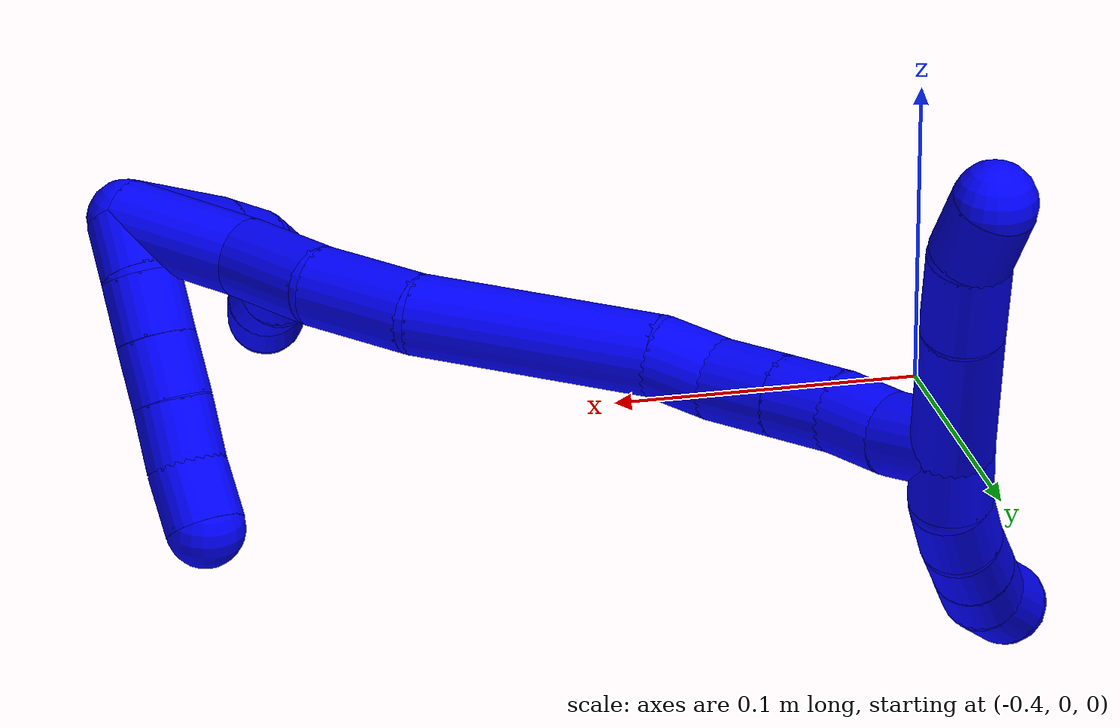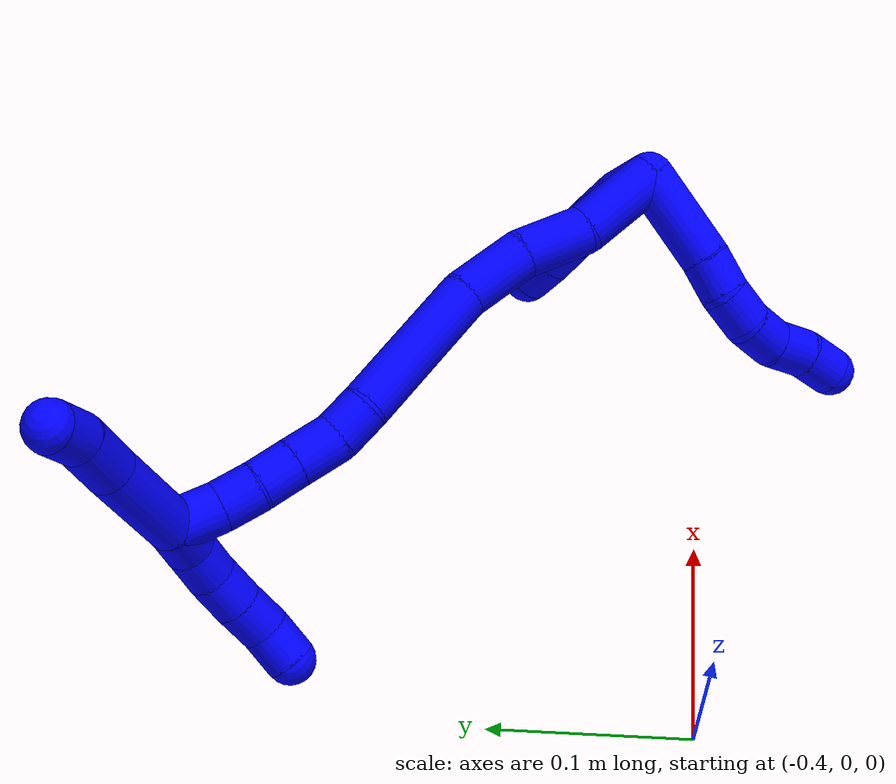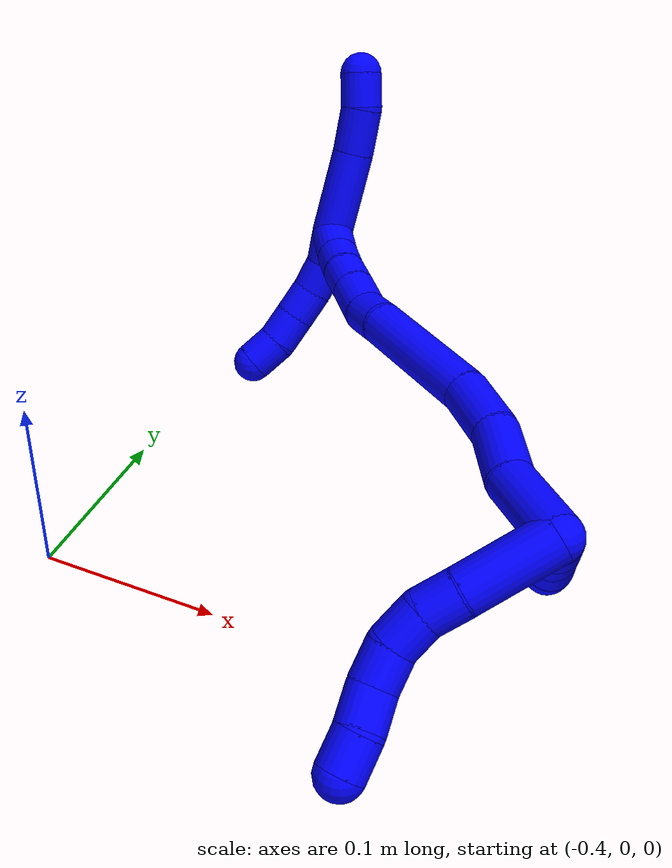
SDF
<sdf version="1.7">
 <world name="default">
  <model name="1">
   <static>0</static>
   <link name="1">
    <collision name="collision-cylinder-e_1_2_8">
     <pose>-0.017729 -0.012475 -0.011765 2.32689 -0.802058 -1.55331</pose>
     <geometry><cylinder><radius>0.0125</radius><length>0.04933</length></cylinder></geometry>
     <surface>
      <friction><ode><mu>1.16</mu><mu2>1.16</mu2><slip1>0</slip1><slip2>0</slip2></ode></friction>
      <contact><ode><kp>1e+06</kp><kd>1</kd><max_vel>0</max_vel><min_depth>0.001</min_depth></ode></contact>
     </surface>
    </collision>
    <visual name="visual-cylinder-e_1_2_8">
     <pose>-0.017729 -0.012475 -0.011765 2.32689 -0.802058 -1.55331</pose>
     <geometry><cylinder><radius>0.0125</radius><length>0.04933</length></cylinder></geometry>
     <material><ambient>0 0 1 1</ambient></material>
    </visual>
    <collision name="collision-cylinder-e_2_8_9">
     <pose>-0.042888 -0.029096 -0.02879 2.47418 -0.837238 -1.81776</pose>
     <geometry><cylinder><radius>0.0125</radius><length>0.020007</length></cylinder></geometry>
     <surface>
      <friction><ode><mu>1.16</mu><mu2>1.16</mu2><slip1>0</slip1><slip2>0</slip2></ode></friction>
      <contact><ode><kp>1e+06</kp><kd>1</kd><max_vel>0</max_vel><min_depth>0.001</min_depth></ode></contact>
     </surface>
    </collision>
    <visual name="visual-cylinder-e_2_8_9">
     <pose>-0.042888 -0.029096 -0.02879 2.47418 -0.837238 -1.81776</pose>
     <geometry><cylinder><radius>0.0125</radius><length>0.020007</length></cylinder></geometry>
     <material><ambient>0 0 1 1</ambient></material>
    </visual>
    <collision name="collision-cylinder-e_3_9_10">
     <pose>-0.055451 -0.038486 -0.04098 2.49382 -0.533441 -1.36631</pose>
     <geometry><cylinder><radius>0.0125</radius><length>0.020185</length></cylinder></geometry>
     <surface>
      <friction><ode><mu>1.16</mu><mu2>1.16</mu2><slip1>0</slip1><slip2>0</slip2></ode></friction>
      <contact><ode><kp>1e+06</kp><kd>1</kd><max_vel>0</max_vel><min_depth>0.001</min_depth></ode></contact>
     </surface>
    </collision>
    <visual name="visual-cylinder-e_3_9_10">
     <pose>-0.055451 -0.038486 -0.04098 2.49382 -0.533441 -1.36631</pose>
     <geometry><cylinder><radius>0.0125</radius><length>0.020185</length></cylinder></geometry>
     <material><ambient>0 0 1 1</ambient></material>
    </visual>
    <collision name="collision-cylinder-e_4_10_11">
     <pose>-0.062684 -0.049862 -0.055534 2.46418 -0.211547 -0.585436</pose>
     <geometry><cylinder><radius>0.0125</radius><length>0.020014</length></cylinder></geometry>
     <surface>
      <friction><ode><mu>1.16</mu><mu2>1.16</mu2><slip1>0</slip1><slip2>0</slip2></ode></friction>
      <contact><ode><kp>1e+06</kp><kd>1</kd><max_vel>0</max_vel><min_depth>0.001</min_depth></ode></contact>
     </surface>
    </collision>
    <visual name="visual-cylinder-e_4_10_11">
     <pose>-0.062684 -0.049862 -0.055534 2.46418 -0.211547 -0.585436</pose>
     <geometry><cylinder><radius>0.0125</radius><length>0.020014</length></cylinder></geometry>
     <material><ambient>0 0 1 1</ambient></material>
    </visual>
    <collision name="collision-cylinder-e_5_11_12">
     <pose>-0.065038 -0.064063 -0.069359 2.22609 -0.024815 -0.050363</pose>
     <geometry><cylinder><radius>0.0125</radius><length>0.020359</length></cylinder></geometry>
     <surface>
      <friction><ode><mu>1.16</mu><mu2>1.16</mu2><slip1>0</slip1><slip2>0</slip2></ode></friction>
      <contact><ode><kp>1e+06</kp><kd>1</kd><max_vel>0</max_vel><min_depth>0.001</min_depth></ode></contact>
     </surface>
    </collision>
    <visual name="visual-cylinder-e_5_11_12">
     <pose>-0.065038 -0.064063 -0.069359 2.22609 -0.024815 -0.050363</pose>
     <geometry><cylinder><radius>0.0125</radius><length>0.020359</length></cylinder></geometry>
     <material><ambient>0 0 1 1</ambient></material>
    </visual>
    <collision name="collision-cylinder-e_6_12_6">
     <pose>-0.067174 -0.078922 -0.082729 2.38329 -0.188483 -0.465861</pose>
     <geometry><cylinder><radius>0.0125</radius><length>0.020105</length></cylinder></geometry>
     <surface>
      <friction><ode><mu>1.16</mu><mu2>1.16</mu2><slip1>0</slip1><slip2>0</slip2></ode></friction>
      <contact><ode><kp>1e+06</kp><kd>1</kd><max_vel>0</max_vel><min_depth>0.001</min_depth></ode></contact>
     </surface>
    </collision>
    <visual name="visual-cylinder-e_6_12_6">
     <pose>-0.067174 -0.078922 -0.082729 2.38329 -0.188483 -0.465861</pose>
     <geometry><cylinder><radius>0.0125</radius><length>0.020105</length></cylinder></geometry>
     <material><ambient>0 0 1 1</ambient></material>
    </visual>
    <collision name="collision-cylinder-e_1_2_13">
     <pose>-0.000382 0.007913 -0.006102 -2.22771 -0.038236 0.077743</pose>
     <geometry><cylinder><radius>0.0125</radius><length>0.02</length></cylinder></geometry>
     <surface>
      <friction><ode><mu>1.16</mu><mu2>1.16</mu2><slip1>0</slip1><slip2>0</slip2></ode></friction>
      <contact><ode><kp>1e+06</kp><kd>1</kd><max_vel>0</max_vel><min_depth>0.001</min_depth></ode></contact>
     </surface>
    </collision>
    <visual name="visual-cylinder-e_1_2_13">
     <pose>-0.000382 0.007913 -0.006102 -2.22771 -0.038236 0.077743</pose>
     <geometry><cylinder><radius>0.0125</radius><length>0.02</length></cylinder></geometry>
     <material><ambient>0 0 1 1</ambient></material>
    </visual>
    <collision name="collision-cylinder-e_2_13_14">
     <pose>-0.001581 0.022344 -0.019745 -2.42878 -0.081741 0.218799</pose>
     <geometry><cylinder><radius>0.0125</radius><length>0.02</length></cylinder></geometry>
     <surface>
      <friction><ode><mu>1.16</mu><mu2>1.16</mu2><slip1>0</slip1><slip2>0</slip2></ode></friction>
      <contact><ode><kp>1e+06</kp><kd>1</kd><max_vel>0</max_vel><min_depth>0.001</min_depth></ode></contact>
     </surface>
    </collision>
    <visual name="visual-cylinder-e_2_13_14">
     <pose>-0.001581 0.022344 -0.019745 -2.42878 -0.081741 0.218799</pose>
     <geometry><cylinder><radius>0.0125</radius><length>0.02</length></cylinder></geometry>
     <material><ambient>0 0 1 1</ambient></material>
    </visual>
    <collision name="collision-cylinder-e_3_14_15">
     <pose>-0.003382 0.035313 -0.034861 -2.43622 -0.098626 0.266578</pose>
     <geometry><cylinder><radius>0.0125</radius><length>0.02</length></cylinder></geometry>
     <surface>
      <friction><ode><mu>1.16</mu><mu2>1.16</mu2><slip1>0</slip1><slip2>0</slip2></ode></friction>
      <contact><ode><kp>1e+06</kp><kd>1</kd><max_vel>0</max_vel><min_depth>0.001</min_depth></ode></contact>
     </surface>
    </collision>
    <visual name="visual-cylinder-e_3_14_15">
     <pose>-0.003382 0.035313 -0.034861 -2.43622 -0.098626 0.266578</pose>
     <geometry><cylinder><radius>0.0125</radius><length>0.02</length></cylinder></geometry>
     <material><ambient>0 0 1 1</ambient></material>
    </visual>
    <collision name="collision-cylinder-e_4_15_16">
     <pose>-0.005155 0.047863 -0.050324 -2.48332 -0.078906 0.230114</pose>
     <geometry><cylinder><radius>0.0125</radius><length>0.02</length></cylinder></geometry>
     <surface>
      <friction><ode><mu>1.16</mu><mu2>1.16</mu2><slip1>0</slip1><slip2>0</slip2></ode></friction>
      <contact><ode><kp>1e+06</kp><kd>1</kd><max_vel>0</max_vel><min_depth>0.001</min_depth></ode></contact>
     </surface>
    </collision>
    <visual name="visual-cylinder-e_4_15_16">
     <pose>-0.005155 0.047863 -0.050324 -2.48332 -0.078906 0.230114</pose>
     <geometry><cylinder><radius>0.0125</radius><length>0.02</length></cylinder></geometry>
     <material><ambient>0 0 1 1</ambient></material>
    </visual>
    <collision name="collision-cylinder-e_5_16_5">
     <pose>-0.007123 0.061036 -0.065179 -2.34874 -0.118254 0.280975</pose>
     <geometry><cylinder><radius>0.0125</radius><length>0.02</length></cylinder></geometry>
     <surface>
      <friction><ode><mu>1.16</mu><mu2>1.16</mu2><slip1>0</slip1><slip2>0</slip2></ode></friction>
      <contact><ode><kp>1e+06</kp><kd>1</kd><max_vel>0</max_vel><min_depth>0.001</min_depth></ode></contact>
     </surface>
    </collision>
    <visual name="visual-cylinder-e_5_16_5">
     <pose>-0.007123 0.061036 -0.065179 -2.34874 -0.118254 0.280975</pose>
     <geometry><cylinder><radius>0.0125</radius><length>0.02</length></cylinder></geometry>
     <material><ambient>0 0 1 1</ambient></material>
    </visual>
    <collision name="collision-cylinder-e_1_2_17">
     <pose>-0.014435 0.01698 0.000565 -1.53756 -0.704313 0.683061</pose>
     <geometry><cylinder><radius>0.0125</radius><length>0.044587</length></cylinder></geometry>
     <surface>
      <friction><ode><mu>1.16</mu><mu2>1.16</mu2><slip1>0</slip1><slip2>0</slip2></ode></friction>
      <contact><ode><kp>1e+06</kp><kd>1</kd><max_vel>0</max_vel><min_depth>0.001</min_depth></ode></contact>
     </surface>
    </collision>
    <visual name="visual-cylinder-e_1_2_17">
     <pose>-0.014435 0.01698 0.000565 -1.53756 -0.704313 0.683061</pose>
     <geometry><cylinder><radius>0.0125</radius><length>0.044587</length></cylinder></geometry>
     <material><ambient>0 0 1 1</ambient></material>
    </visual>
    <collision name="collision-cylinder-e_2_17_18">
     <pose>-0.036131 0.049553 0.003652 -1.4104 -0.430825 0.368284</pose>
     <geometry><cylinder><radius>0.0125</radius><length>0.03477</length></cylinder></geometry>
     <surface>
      <friction><ode><mu>1.16</mu><mu2>1.16</mu2><slip1>0</slip1><slip2>0</slip2></ode></friction>
      <contact><ode><kp>1e+06</kp><kd>1</kd><max_vel>0</max_vel><min_depth>0.001</min_depth></ode></contact>
     </surface>
    </collision>
    <visual name="visual-cylinder-e_2_17_18">
     <pose>-0.036131 0.049553 0.003652 -1.4104 -0.430825 0.368284</pose>
     <geometry><cylinder><radius>0.0125</radius><length>0.03477</length></cylinder></geometry>
     <material><ambient>0 0 1 1</ambient></material>
    </visual>
    <collision name="collision-cylinder-e_3_18_19">
     <pose>-0.054594 0.079288 0.007605 -1.47001 -0.667463 0.60742</pose>
     <geometry><cylinder><radius>0.0125</radius><length>0.036195</length></cylinder></geometry>
     <surface>
      <friction><ode><mu>1.16</mu><mu2>1.16</mu2><slip1>0</slip1><slip2>0</slip2></ode></friction>
      <contact><ode><kp>1e+06</kp><kd>1</kd><max_vel>0</max_vel><min_depth>0.001</min_depth></ode></contact>
     </surface>
    </collision>
    <visual name="visual-cylinder-e_3_18_19">
     <pose>-0.054594 0.079288 0.007605 -1.47001 -0.667463 0.60742</pose>
     <geometry><cylinder><radius>0.0125</radius><length>0.036195</length></cylinder></geometry>
     <material><ambient>0 0 1 1</ambient></material>
    </visual>
    <collision name="collision-cylinder-e_4_19_20">
     <pose>-0.095873 0.117372 0.011211 -1.48015 -0.896486 0.827605</pose>
     <geometry><cylinder><radius>0.0125</radius><length>0.077009</length></cylinder></geometry>
     <surface>
      <friction><ode><mu>1.16</mu><mu2>1.16</mu2><slip1>0</slip1><slip2>0</slip2></ode></friction>
      <contact><ode><kp>1e+06</kp><kd>1</kd><max_vel>0</max_vel><min_depth>0.001</min_depth></ode></contact>
     </surface>
    </collision>
    <visual name="visual-cylinder-e_4_19_20">
     <pose>-0.095873 0.117372 0.011211 -1.48015 -0.896486 0.827605</pose>
     <geometry><cylinder><radius>0.0125</radius><length>0.077009</length></cylinder></geometry>
     <material><ambient>0 0 1 1</ambient></material>
    </visual>
    <collision name="collision-cylinder-e_5_20_21">
     <pose>-0.132974 0.148399 0.012457 -1.70141 -0.776688 0.872776</pose>
     <geometry><cylinder><radius>0.0125</radius><length>0.020039</length></cylinder></geometry>
     <surface>
      <friction><ode><mu>1.16</mu><mu2>1.16</mu2><slip1>0</slip1><slip2>0</slip2></ode></friction>
      <contact><ode><kp>1e+06</kp><kd>1</kd><max_vel>0</max_vel><min_depth>0.001</min_depth></ode></contact>
     </surface>
    </collision>
    <visual name="visual-cylinder-e_5_20_21">
     <pose>-0.132974 0.148399 0.012457 -1.70141 -0.776688 0.872776</pose>
     <geometry><cylinder><radius>0.0125</radius><length>0.020039</length></cylinder></geometry>
     <material><ambient>0 0 1 1</ambient></material>
    </visual>
    <collision name="collision-cylinder-e_6_21_22">
     <pose>-0.146872 0.165158 0.0131 -1.40956 -0.611766 0.524775</pose>
     <geometry><cylinder><radius>0.0125</radius><length>0.023944</length></cylinder></geometry>
     <surface>
      <friction><ode><mu>1.16</mu><mu2>1.16</mu2><slip1>0</slip1><slip2>0</slip2></ode></friction>
      <contact><ode><kp>1e+06</kp><kd>1</kd><max_vel>0</max_vel><min_depth>0.001</min_depth></ode></contact>
     </surface>
    </collision>
    <visual name="visual-cylinder-e_6_21_22">
     <pose>-0.146872 0.165158 0.0131 -1.40956 -0.611766 0.524775</pose>
     <geometry><cylinder><radius>0.0125</radius><length>0.023944</length></cylinder></geometry>
     <material><ambient>0 0 1 1</ambient></material>
    </visual>
    <collision name="collision-cylinder-e_7_22_23">
     <pose>-0.159666 0.182969 0.015918 -1.41896 -0.623347 0.539755</pose>
     <geometry><cylinder><radius>0.0125</radius><length>0.020277</length></cylinder></geometry>
     <surface>
      <friction><ode><mu>1.16</mu><mu2>1.16</mu2><slip1>0</slip1><slip2>0</slip2></ode></friction>
      <contact><ode><kp>1e+06</kp><kd>1</kd><max_vel>0</max_vel><min_depth>0.001</min_depth></ode></contact>
     </surface>
    </collision>
    <visual name="visual-cylinder-e_7_22_23">
     <pose>-0.159666 0.182969 0.015918 -1.41896 -0.623347 0.539755</pose>
     <geometry><cylinder><radius>0.0125</radius><length>0.020277</length></cylinder></geometry>
     <material><ambient>0 0 1 1</ambient></material>
    </visual>
    <collision name="collision-cylinder-e_8_23_24">
     <pose>-0.170561 0.199823 0.017758 -1.50274 -0.517712 0.484988</pose>
     <geometry><cylinder><radius>0.0125</radius><length>0.020109</length></cylinder></geometry>
     <surface>
      <friction><ode><mu>1.16</mu><mu2>1.16</mu2><slip1>0</slip1><slip2>0</slip2></ode></friction>
      <contact><ode><kp>1e+06</kp><kd>1</kd><max_vel>0</max_vel><min_depth>0.001</min_depth></ode></contact>
     </surface>
    </collision>
    <visual name="visual-cylinder-e_8_23_24">
     <pose>-0.170561 0.199823 0.017758 -1.50274 -0.517712 0.484988</pose>
     <geometry><cylinder><radius>0.0125</radius><length>0.020109</length></cylinder></geometry>
     <material><ambient>0 0 1 1</ambient></material>
    </visual>
    <collision name="collision-cylinder-e_9_24_1">
     <pose>-0.18092 0.218388 0.021013 -1.30689 -0.48555 0.374793</pose>
     <geometry><cylinder><radius>0.0125</radius><length>0.023069</length></cylinder></geometry>
     <surface>
      <friction><ode><mu>1.16</mu><mu2>1.16</mu2><slip1>0</slip1><slip2>0</slip2></ode></friction>
      <contact><ode><kp>1e+06</kp><kd>1</kd><max_vel>0</max_vel><min_depth>0.001</min_depth></ode></contact>
     </surface>
    </collision>
    <visual name="visual-cylinder-e_9_24_1">
     <pose>-0.18092 0.218388 0.021013 -1.30689 -0.48555 0.374793</pose>
     <geometry><cylinder><radius>0.0125</radius><length>0.023069</length></cylinder></geometry>
     <material><ambient>0 0 1 1</ambient></material>
    </visual>
    <collision name="collision-cylinder-e_1_1_25">
     <pose>-0.187237 0.226789 0.013823 2.99576 -0.09356 -1.13987</pose>
     <geometry><cylinder><radius>0.0125</radius><length>0.02</length></cylinder></geometry>
     <surface>
      <friction><ode><mu>1.16</mu><mu2>1.16</mu2><slip1>0</slip1><slip2>0</slip2></ode></friction>
      <contact><ode><kp>1e+06</kp><kd>1</kd><max_vel>0</max_vel><min_depth>0.001</min_depth></ode></contact>
     </surface>
    </collision>
    <visual name="visual-cylinder-e_1_1_25">
     <pose>-0.187237 0.226789 0.013823 2.99576 -0.09356 -1.13987</pose>
     <geometry><cylinder><radius>0.0125</radius><length>0.02</length></cylinder></geometry>
     <material><ambient>0 0 1 1</ambient></material>
    </visual>
    <collision name="collision-cylinder-e_2_25_26">
     <pose>-0.19151 0.222142 -0.004894 2.79528 -0.340394 -1.55321</pose>
     <geometry><cylinder><radius>0.0125</radius><length>0.02</length></cylinder></geometry>
     <surface>
      <friction><ode><mu>1.16</mu><mu2>1.16</mu2><slip1>0</slip1><slip2>0</slip2></ode></friction>
      <contact><ode><kp>1e+06</kp><kd>1</kd><max_vel>0</max_vel><min_depth>0.001</min_depth></ode></contact>
     </surface>
    </collision>
    <visual name="visual-cylinder-e_2_25_26">
     <pose>-0.19151 0.222142 -0.004894 2.79528 -0.340394 -1.55321</pose>
     <geometry><cylinder><radius>0.0125</radius><length>0.02</length></cylinder></geometry>
     <material><ambient>0 0 1 1</ambient></material>
    </visual>
    <collision name="collision-cylinder-e_3_26_27">
     <pose>-0.198867 0.214376 -0.021697 2.61942 -0.413576 -1.33126</pose>
     <geometry><cylinder><radius>0.0125</radius><length>0.02</length></cylinder></geometry>
     <surface>
      <friction><ode><mu>1.16</mu><mu2>1.16</mu2><slip1>0</slip1><slip2>0</slip2></ode></friction>
      <contact><ode><kp>1e+06</kp><kd>1</kd><max_vel>0</max_vel><min_depth>0.001</min_depth></ode></contact>
     </surface>
    </collision>
    <visual name="visual-cylinder-e_3_26_27">
     <pose>-0.198867 0.214376 -0.021697 2.61942 -0.413576 -1.33126</pose>
     <geometry><cylinder><radius>0.0125</radius><length>0.02</length></cylinder></geometry>
     <material><ambient>0 0 1 1</ambient></material>
    </visual>
    <collision name="collision-cylinder-e_4_27_28">
     <pose>-0.206792 0.204699 -0.037292 2.55323 -0.401237 -1.18227</pose>
     <geometry><cylinder><radius>0.0125</radius><length>0.02</length></cylinder></geometry>
     <surface>
      <friction><ode><mu>1.16</mu><mu2>1.16</mu2><slip1>0</slip1><slip2>0</slip2></ode></friction>
      <contact><ode><kp>1e+06</kp><kd>1</kd><max_vel>0</max_vel><min_depth>0.001</min_depth></ode></contact>
     </surface>
    </collision>
    <visual name="visual-cylinder-e_4_27_28">
     <pose>-0.206792 0.204699 -0.037292 2.55323 -0.401237 -1.18227</pose>
     <geometry><cylinder><radius>0.0125</radius><length>0.02</length></cylinder></geometry>
     <material><ambient>0 0 1 1</ambient></material>
    </visual>
    <collision name="collision-cylinder-e_5_28_4">
     <pose>-0.216629 0.19442 -0.051121 2.44426 -0.635011 -1.47004</pose>
     <geometry><cylinder><radius>0.0125</radius><length>0.02</length></cylinder></geometry>
     <surface>
      <friction><ode><mu>1.16</mu><mu2>1.16</mu2><slip1>0</slip1><slip2>0</slip2></ode></friction>
      <contact><ode><kp>1e+06</kp><kd>1</kd><max_vel>0</max_vel><min_depth>0.001</min_depth></ode></contact>
     </surface>
    </collision>
    <visual name="visual-cylinder-e_5_28_4">
     <pose>-0.216629 0.19442 -0.051121 2.44426 -0.635011 -1.47004</pose>
     <geometry><cylinder><radius>0.0125</radius><length>0.02</length></cylinder></geometry>
     <material><ambient>0 0 1 1</ambient></material>
    </visual>
    <collision name="collision-cylinder-e_1_1_29">
     <pose>-0.183335 0.2362 0.04797 -0.316754 0.11555 -0.018475</pose>
     <geometry><cylinder><radius>0.0125</radius><length>0.05148</length></cylinder></geometry>
     <surface>
      <friction><ode><mu>1.16</mu><mu2>1.16</mu2><slip1>0</slip1><slip2>0</slip2></ode></friction>
      <contact><ode><kp>1e+06</kp><kd>1</kd><max_vel>0</max_vel><min_depth>0.001</min_depth></ode></contact>
     </surface>
    </collision>
    <visual name="visual-cylinder-e_1_1_29">
     <pose>-0.183335 0.2362 0.04797 -0.316754 0.11555 -0.018475</pose>
     <geometry><cylinder><radius>0.0125</radius><length>0.05148</length></cylinder></geometry>
     <material><ambient>0 0 1 1</ambient></material>
    </visual>
    <collision name="collision-cylinder-e_2_29_30">
     <pose>-0.179416 0.247367 0.085691 -0.234249 0.068818 -0.008101</pose>
     <geometry><cylinder><radius>0.0125</radius><length>0.02767</length></cylinder></geometry>
     <surface>
      <friction><ode><mu>1.16</mu><mu2>1.16</mu2><slip1>0</slip1><slip2>0</slip2></ode></friction>
      <contact><ode><kp>1e+06</kp><kd>1</kd><max_vel>0</max_vel><min_depth>0.001</min_depth></ode></contact>
     </surface>
    </collision>
    <visual name="visual-cylinder-e_2_29_30">
     <pose>-0.179416 0.247367 0.085691 -0.234249 0.068818 -0.008101</pose>
     <geometry><cylinder><radius>0.0125</radius><length>0.02767</length></cylinder></geometry>
     <material><ambient>0 0 1 1</ambient></material>
    </visual>
    <collision name="collision-cylinder-e_3_30_3">
     <pose>-0.180277 0.253744 0.108881 -0.314189 -0.174676 0.027737</pose>
     <geometry><cylinder><radius>0.0125</radius><length>0.020851</length></cylinder></geometry>
     <surface>
      <friction><ode><mu>1.16</mu><mu2>1.16</mu2><slip1>0</slip1><slip2>0</slip2></ode></friction>
      <contact><ode><kp>1e+06</kp><kd>1</kd><max_vel>0</max_vel><min_depth>0.001</min_depth></ode></contact>
     </surface>
    </collision>
    <visual name="visual-cylinder-e_3_30_3">
     <pose>-0.180277 0.253744 0.108881 -0.314189 -0.174676 0.027737</pose>
     <geometry><cylinder><radius>0.0125</radius><length>0.020851</length></cylinder></geometry>
     <material><ambient>0 0 1 1</ambient></material>
    </visual>
    <collision name="collision-sphere-3">
     <pose>-0.182089 0.256917 0.118645 0 -0 0</pose>
     <geometry><sphere><radius>0.0125</radius></sphere></geometry>
     <surface>
      <friction><ode><mu>1.16</mu><mu2>1.16</mu2><slip1>0</slip1><slip2>0</slip2></ode></friction>
      <contact><ode><kp>1e+06</kp><kd>1</kd><max_vel>0</max_vel><min_depth>0.001</min_depth></ode></contact>
     </surface>
    </collision>
    <visual name="visual-sphere-3">
     <pose>-0.182089 0.256917 0.118645 0 -0 0</pose>
     <geometry><sphere><radius>0.0125</radius></sphere></geometry>
     <material><ambient>0 0 1 1</ambient></material>
    </visual>
    <collision name="collision-sphere-30">
     <pose>-0.178465 0.250571 0.099117 0 -0 0</pose>
     <geometry><sphere><radius>0.0125</radius></sphere></geometry>
     <surface>
      <friction><ode><mu>1.16</mu><mu2>1.16</mu2><slip1>0</slip1><slip2>0</slip2></ode></friction>
      <contact><ode><kp>1e+06</kp><kd>1</kd><max_vel>0</max_vel><min_depth>0.001</min_depth></ode></contact>
     </surface>
    </collision>
    <visual name="visual-sphere-30">
     <pose>-0.178465 0.250571 0.099117 0 -0 0</pose>
     <geometry><sphere><radius>0.0125</radius></sphere></geometry>
     <material><ambient>0 0 1 1</ambient></material>
    </visual>
    <collision name="collision-sphere-29">
     <pose>-0.180368 0.244164 0.072266 0 -0 0</pose>
     <geometry><sphere><radius>0.0125</radius></sphere></geometry>
     <surface>
      <friction><ode><mu>1.16</mu><mu2>1.16</mu2><slip1>0</slip1><slip2>0</slip2></ode></friction>
      <contact><ode><kp>1e+06</kp><kd>1</kd><max_vel>0</max_vel><min_depth>0.001</min_depth></ode></contact>
     </surface>
    </collision>
    <visual name="visual-sphere-29">
     <pose>-0.180368 0.244164 0.072266 0 -0 0</pose>
     <geometry><sphere><radius>0.0125</radius></sphere></geometry>
     <material><ambient>0 0 1 1</ambient></material>
    </visual>
    <collision name="collision-sphere-4">
     <pose>-0.222561 0.18925 -0.057292 0 -0 0</pose>
     <geometry><sphere><radius>0.0125</radius></sphere></geometry>
     <surface>
      <friction><ode><mu>1.16</mu><mu2>1.16</mu2><slip1>0</slip1><slip2>0</slip2></ode></friction>
      <contact><ode><kp>1e+06</kp><kd>1</kd><max_vel>0</max_vel><min_depth>0.001</min_depth></ode></contact>
     </surface>
    </collision>
    <visual name="visual-sphere-4">
     <pose>-0.222561 0.18925 -0.057292 0 -0 0</pose>
     <geometry><sphere><radius>0.0125</radius></sphere></geometry>
     <material><ambient>0 0 1 1</ambient></material>
    </visual>
    <collision name="collision-sphere-28">
     <pose>-0.210697 0.19959 -0.044949 0 -0 0</pose>
     <geometry><sphere><radius>0.0125</radius></sphere></geometry>
     <surface>
      <friction><ode><mu>1.16</mu><mu2>1.16</mu2><slip1>0</slip1><slip2>0</slip2></ode></friction>
      <contact><ode><kp>1e+06</kp><kd>1</kd><max_vel>0</max_vel><min_depth>0.001</min_depth></ode></contact>
     </surface>
    </collision>
    <visual name="visual-sphere-28">
     <pose>-0.210697 0.19959 -0.044949 0 -0 0</pose>
     <geometry><sphere><radius>0.0125</radius></sphere></geometry>
     <material><ambient>0 0 1 1</ambient></material>
    </visual>
    <collision name="collision-sphere-27">
     <pose>-0.202886 0.209808 -0.029634 0 -0 0</pose>
     <geometry><sphere><radius>0.0125</radius></sphere></geometry>
     <surface>
      <friction><ode><mu>1.16</mu><mu2>1.16</mu2><slip1>0</slip1><slip2>0</slip2></ode></friction>
      <contact><ode><kp>1e+06</kp><kd>1</kd><max_vel>0</max_vel><min_depth>0.001</min_depth></ode></contact>
     </surface>
    </collision>
    <visual name="visual-sphere-27">
     <pose>-0.202886 0.209808 -0.029634 0 -0 0</pose>
     <geometry><sphere><radius>0.0125</radius></sphere></geometry>
     <material><ambient>0 0 1 1</ambient></material>
    </visual>
    <collision name="collision-sphere-26">
     <pose>-0.194849 0.218943 -0.013761 0 -0 0</pose>
     <geometry><sphere><radius>0.0125</radius></sphere></geometry>
     <surface>
      <friction><ode><mu>1.16</mu><mu2>1.16</mu2><slip1>0</slip1><slip2>0</slip2></ode></friction>
      <contact><ode><kp>1e+06</kp><kd>1</kd><max_vel>0</max_vel><min_depth>0.001</min_depth></ode></contact>
     </surface>
    </collision>
    <visual name="visual-sphere-26">
     <pose>-0.194849 0.218943 -0.013761 0 -0 0</pose>
     <geometry><sphere><radius>0.0125</radius></sphere></geometry>
     <material><ambient>0 0 1 1</ambient></material>
    </visual>
    <collision name="collision-sphere-25">
     <pose>-0.188171 0.225342 0.003973 0 -0 0</pose>
     <geometry><sphere><radius>0.0125</radius></sphere></geometry>
     <surface>
      <friction><ode><mu>1.16</mu><mu2>1.16</mu2><slip1>0</slip1><slip2>0</slip2></ode></friction>
      <contact><ode><kp>1e+06</kp><kd>1</kd><max_vel>0</max_vel><min_depth>0.001</min_depth></ode></contact>
     </surface>
    </collision>
    <visual name="visual-sphere-25">
     <pose>-0.188171 0.225342 0.003973 0 -0 0</pose>
     <geometry><sphere><radius>0.0125</radius></sphere></geometry>
     <material><ambient>0 0 1 1</ambient></material>
    </visual>
    <collision name="collision-sphere-1">
     <pose>-0.186303 0.228236 0.023674 0 -0 0</pose>
     <geometry><sphere><radius>0.0125</radius></sphere></geometry>
     <surface>
      <friction><ode><mu>1.16</mu><mu2>1.16</mu2><slip1>0</slip1><slip2>0</slip2></ode></friction>
      <contact><ode><kp>1e+06</kp><kd>1</kd><max_vel>0</max_vel><min_depth>0.001</min_depth></ode></contact>
     </surface>
    </collision>
    <visual name="visual-sphere-1">
     <pose>-0.186303 0.228236 0.023674 0 -0 0</pose>
     <geometry><sphere><radius>0.0125</radius></sphere></geometry>
     <material><ambient>0 0 1 1</ambient></material>
    </visual>
    <collision name="collision-sphere-24">
     <pose>-0.175537 0.20854 0.018352 0 -0 0</pose>
     <geometry><sphere><radius>0.0125</radius></sphere></geometry>
     <surface>
      <friction><ode><mu>1.16</mu><mu2>1.16</mu2><slip1>0</slip1><slip2>0</slip2></ode></friction>
      <contact><ode><kp>1e+06</kp><kd>1</kd><max_vel>0</max_vel><min_depth>0.001</min_depth></ode></contact>
     </surface>
    </collision>
    <visual name="visual-sphere-24">
     <pose>-0.175537 0.20854 0.018352 0 -0 0</pose>
     <geometry><sphere><radius>0.0125</radius></sphere></geometry>
     <material><ambient>0 0 1 1</ambient></material>
    </visual>
    <collision name="collision-sphere-23">
     <pose>-0.165585 0.191106 0.017163 0 -0 0</pose>
     <geometry><sphere><radius>0.0125</radius></sphere></geometry>
     <surface>
      <friction><ode><mu>1.16</mu><mu2>1.16</mu2><slip1>0</slip1><slip2>0</slip2></ode></friction>
      <contact><ode><kp>1e+06</kp><kd>1</kd><max_vel>0</max_vel><min_depth>0.001</min_depth></ode></contact>
     </surface>
    </collision>
    <visual name="visual-sphere-23">
     <pose>-0.165585 0.191106 0.017163 0 -0 0</pose>
     <geometry><sphere><radius>0.0125</radius></sphere></geometry>
     <material><ambient>0 0 1 1</ambient></material>
    </visual>
    <collision name="collision-sphere-22">
     <pose>-0.153748 0.174832 0.014673 0 -0 0</pose>
     <geometry><sphere><radius>0.0125</radius></sphere></geometry>
     <surface>
      <friction><ode><mu>1.16</mu><mu2>1.16</mu2><slip1>0</slip1><slip2>0</slip2></ode></friction>
      <contact><ode><kp>1e+06</kp><kd>1</kd><max_vel>0</max_vel><min_depth>0.001</min_depth></ode></contact>
     </surface>
    </collision>
    <visual name="visual-sphere-22">
     <pose>-0.153748 0.174832 0.014673 0 -0 0</pose>
     <geometry><sphere><radius>0.0125</radius></sphere></geometry>
     <material><ambient>0 0 1 1</ambient></material>
    </visual>
    <collision name="collision-sphere-21">
     <pose>-0.139997 0.155485 0.011526 0 -0 0</pose>
     <geometry><sphere><radius>0.0125</radius></sphere></geometry>
     <surface>
      <friction><ode><mu>1.16</mu><mu2>1.16</mu2><slip1>0</slip1><slip2>0</slip2></ode></friction>
      <contact><ode><kp>1e+06</kp><kd>1</kd><max_vel>0</max_vel><min_depth>0.001</min_depth></ode></contact>
     </surface>
    </collision>
    <visual name="visual-sphere-21">
     <pose>-0.139997 0.155485 0.011526 0 -0 0</pose>
     <geometry><sphere><radius>0.0125</radius></sphere></geometry>
     <material><ambient>0 0 1 1</ambient></material>
    </visual>
    <collision name="collision-sphere-12">
     <pose>-0.065291 -0.072131 -0.075561 0 -0 0</pose>
     <geometry><sphere><radius>0.0125</radius></sphere></geometry>
     <surface>
      <friction><ode><mu>1.16</mu><mu2>1.16</mu2><slip1>0</slip1><slip2>0</slip2></ode></friction>
      <contact><ode><kp>1e+06</kp><kd>1</kd><max_vel>0</max_vel><min_depth>0.001</min_depth></ode></contact>
     </surface>
    </collision>
    <visual name="visual-sphere-12">
     <pose>-0.065291 -0.072131 -0.075561 0 -0 0</pose>
     <geometry><sphere><radius>0.0125</radius></sphere></geometry>
     <material><ambient>0 0 1 1</ambient></material>
    </visual>
    <collision name="collision-sphere-11">
     <pose>-0.064786 -0.055994 -0.063158 0 -0 0</pose>
     <geometry><sphere><radius>0.0125</radius></sphere></geometry>
     <surface>
      <friction><ode><mu>1.16</mu><mu2>1.16</mu2><slip1>0</slip1><slip2>0</slip2></ode></friction>
      <contact><ode><kp>1e+06</kp><kd>1</kd><max_vel>0</max_vel><min_depth>0.001</min_depth></ode></contact>
     </surface>
    </collision>
    <visual name="visual-sphere-11">
     <pose>-0.064786 -0.055994 -0.063158 0 -0 0</pose>
     <geometry><sphere><radius>0.0125</radius></sphere></geometry>
     <material><ambient>0 0 1 1</ambient></material>
    </visual>
    <collision name="collision-sphere-10">
     <pose>-0.060583 -0.043729 -0.04791 0 -0 0</pose>
     <geometry><sphere><radius>0.0125</radius></sphere></geometry>
     <surface>
      <friction><ode><mu>1.16</mu><mu2>1.16</mu2><slip1>0</slip1><slip2>0</slip2></ode></friction>
      <contact><ode><kp>1e+06</kp><kd>1</kd><max_vel>0</max_vel><min_depth>0.001</min_depth></ode></contact>
     </surface>
    </collision>
    <visual name="visual-sphere-10">
     <pose>-0.060583 -0.043729 -0.04791 0 -0 0</pose>
     <geometry><sphere><radius>0.0125</radius></sphere></geometry>
     <material><ambient>0 0 1 1</ambient></material>
    </visual>
    <collision name="collision-sphere-9">
     <pose>-0.050319 -0.033242 -0.034051 0 -0 0</pose>
     <geometry><sphere><radius>0.0125</radius></sphere></geometry>
     <surface>
      <friction><ode><mu>1.16</mu><mu2>1.16</mu2><slip1>0</slip1><slip2>0</slip2></ode></friction>
      <contact><ode><kp>1e+06</kp><kd>1</kd><max_vel>0</max_vel><min_depth>0.001</min_depth></ode></contact>
     </surface>
    </collision>
    <visual name="visual-sphere-9">
     <pose>-0.050319 -0.033242 -0.034051 0 -0 0</pose>
     <geometry><sphere><radius>0.0125</radius></sphere></geometry>
     <material><ambient>0 0 1 1</ambient></material>
    </visual>
    <collision name="collision-sphere-2">
     <geometry><sphere><radius>0.0125</radius></sphere></geometry>
     <surface>
      <friction><ode><mu>1.16</mu><mu2>1.16</mu2><slip1>0</slip1><slip2>0</slip2></ode></friction>
      <contact><ode><kp>1e+06</kp><kd>1</kd><max_vel>0</max_vel><min_depth>0.001</min_depth></ode></contact>
     </surface>
    </collision>
    <visual name="visual-sphere-2">
     <geometry><sphere><radius>0.0125</radius></sphere></geometry>
     <material><ambient>0 0 1 1</ambient></material>
    </visual>
    <collision name="collision-sphere-19">
     <pose>-0.065796 0.09343 0.009035 0 -0 0</pose>
     <geometry><sphere><radius>0.0125</radius></sphere></geometry>
     <surface>
      <friction><ode><mu>1.16</mu><mu2>1.16</mu2><slip1>0</slip1><slip2>0</slip2></ode></friction>
      <contact><ode><kp>1e+06</kp><kd>1</kd><max_vel>0</max_vel><min_depth>0.001</min_depth></ode></contact>
     </surface>
    </collision>
    <visual name="visual-sphere-19">
     <pose>-0.065796 0.09343 0.009035 0 -0 0</pose>
     <geometry><sphere><radius>0.0125</radius></sphere></geometry>
     <material><ambient>0 0 1 1</ambient></material>
    </visual>
    <collision name="collision-sphere-8">
     <pose>-0.035458 -0.024951 -0.02353 0 -0 0</pose>
     <geometry><sphere><radius>0.0125</radius></sphere></geometry>
     <surface>
      <friction><ode><mu>1.16</mu><mu2>1.16</mu2><slip1>0</slip1><slip2>0</slip2></ode></friction>
      <contact><ode><kp>1e+06</kp><kd>1</kd><max_vel>0</max_vel><min_depth>0.001</min_depth></ode></contact>
     </surface>
    </collision>
    <visual name="visual-sphere-8">
     <pose>-0.035458 -0.024951 -0.02353 0 -0 0</pose>
     <geometry><sphere><radius>0.0125</radius></sphere></geometry>
     <material><ambient>0 0 1 1</ambient></material>
    </visual>
    <collision name="collision-sphere-6">
     <pose>-0.069058 -0.085712 -0.089898 0 -0 0</pose>
     <geometry><sphere><radius>0.0125</radius></sphere></geometry>
     <surface>
      <friction><ode><mu>1.16</mu><mu2>1.16</mu2><slip1>0</slip1><slip2>0</slip2></ode></friction>
      <contact><ode><kp>1e+06</kp><kd>1</kd><max_vel>0</max_vel><min_depth>0.001</min_depth></ode></contact>
     </surface>
    </collision>
    <visual name="visual-sphere-6">
     <pose>-0.069058 -0.085712 -0.089898 0 -0 0</pose>
     <geometry><sphere><radius>0.0125</radius></sphere></geometry>
     <material><ambient>0 0 1 1</ambient></material>
    </visual>
    <collision name="collision-sphere-13">
     <pose>-0.000765 0.015826 -0.012205 0 -0 0</pose>
     <geometry><sphere><radius>0.0125</radius></sphere></geometry>
     <surface>
      <friction><ode><mu>1.16</mu><mu2>1.16</mu2><slip1>0</slip1><slip2>0</slip2></ode></friction>
      <contact><ode><kp>1e+06</kp><kd>1</kd><max_vel>0</max_vel><min_depth>0.001</min_depth></ode></contact>
     </surface>
    </collision>
    <visual name="visual-sphere-13">
     <pose>-0.000765 0.015826 -0.012205 0 -0 0</pose>
     <geometry><sphere><radius>0.0125</radius></sphere></geometry>
     <material><ambient>0 0 1 1</ambient></material>
    </visual>
    <collision name="collision-sphere-14">
     <pose>-0.002398 0.028862 -0.027285 0 -0 0</pose>
     <geometry><sphere><radius>0.0125</radius></sphere></geometry>
     <surface>
      <friction><ode><mu>1.16</mu><mu2>1.16</mu2><slip1>0</slip1><slip2>0</slip2></ode></friction>
      <contact><ode><kp>1e+06</kp><kd>1</kd><max_vel>0</max_vel><min_depth>0.001</min_depth></ode></contact>
     </surface>
    </collision>
    <visual name="visual-sphere-14">
     <pose>-0.002398 0.028862 -0.027285 0 -0 0</pose>
     <geometry><sphere><radius>0.0125</radius></sphere></geometry>
     <material><ambient>0 0 1 1</ambient></material>
    </visual>
    <collision name="collision-sphere-15">
     <pose>-0.004367 0.041765 -0.042438 0 -0 0</pose>
     <geometry><sphere><radius>0.0125</radius></sphere></geometry>
     <surface>
      <friction><ode><mu>1.16</mu><mu2>1.16</mu2><slip1>0</slip1><slip2>0</slip2></ode></friction>
      <contact><ode><kp>1e+06</kp><kd>1</kd><max_vel>0</max_vel><min_depth>0.001</min_depth></ode></contact>
     </surface>
    </collision>
    <visual name="visual-sphere-15">
     <pose>-0.004367 0.041765 -0.042438 0 -0 0</pose>
     <geometry><sphere><radius>0.0125</radius></sphere></geometry>
     <material><ambient>0 0 1 1</ambient></material>
    </visual>
    <collision name="collision-sphere-16">
     <pose>-0.005943 0.053962 -0.05821 0 -0 0</pose>
     <geometry><sphere><radius>0.0125</radius></sphere></geometry>
     <surface>
      <friction><ode><mu>1.16</mu><mu2>1.16</mu2><slip1>0</slip1><slip2>0</slip2></ode></friction>
      <contact><ode><kp>1e+06</kp><kd>1</kd><max_vel>0</max_vel><min_depth>0.001</min_depth></ode></contact>
     </surface>
    </collision>
    <visual name="visual-sphere-16">
     <pose>-0.005943 0.053962 -0.05821 0 -0 0</pose>
     <geometry><sphere><radius>0.0125</radius></sphere></geometry>
     <material><ambient>0 0 1 1</ambient></material>
    </visual>
    <collision name="collision-sphere-5">
     <pose>-0.008303 0.06811 -0.072148 0 -0 0</pose>
     <geometry><sphere><radius>0.0125</radius></sphere></geometry>
     <surface>
      <friction><ode><mu>1.16</mu><mu2>1.16</mu2><slip1>0</slip1><slip2>0</slip2></ode></friction>
      <contact><ode><kp>1e+06</kp><kd>1</kd><max_vel>0</max_vel><min_depth>0.001</min_depth></ode></contact>
     </surface>
    </collision>
    <visual name="visual-sphere-5">
     <pose>-0.008303 0.06811 -0.072148 0 -0 0</pose>
     <geometry><sphere><radius>0.0125</radius></sphere></geometry>
     <material><ambient>0 0 1 1</ambient></material>
    </visual>
    <collision name="collision-sphere-17">
     <pose>-0.028871 0.033959 0.001129 0 -0 0</pose>
     <geometry><sphere><radius>0.0125</radius></sphere></geometry>
     <surface>
      <friction><ode><mu>1.16</mu><mu2>1.16</mu2><slip1>0</slip1><slip2>0</slip2></ode></friction>
      <contact><ode><kp>1e+06</kp><kd>1</kd><max_vel>0</max_vel><min_depth>0.001</min_depth></ode></contact>
     </surface>
    </collision>
    <visual name="visual-sphere-17">
     <pose>-0.028871 0.033959 0.001129 0 -0 0</pose>
     <geometry><sphere><radius>0.0125</radius></sphere></geometry>
     <material><ambient>0 0 1 1</ambient></material>
    </visual>
    <collision name="collision-sphere-18">
     <pose>-0.043392 0.065147 0.006175 0 -0 0</pose>
     <geometry><sphere><radius>0.0125</radius></sphere></geometry>
     <surface>
      <friction><ode><mu>1.16</mu><mu2>1.16</mu2><slip1>0</slip1><slip2>0</slip2></ode></friction>
      <contact><ode><kp>1e+06</kp><kd>1</kd><max_vel>0</max_vel><min_depth>0.001</min_depth></ode></contact>
     </surface>
    </collision>
    <visual name="visual-sphere-18">
     <pose>-0.043392 0.065147 0.006175 0 -0 0</pose>
     <geometry><sphere><radius>0.0125</radius></sphere></geometry>
     <material><ambient>0 0 1 1</ambient></material>
    </visual>
    <collision name="collision-sphere-20">
     <pose>-0.125951 0.141314 0.013388 0 -0 0</pose>
     <geometry><sphere><radius>0.0125</radius></sphere></geometry>
     <surface>
      <friction><ode><mu>1.16</mu><mu2>1.16</mu2><slip1>0</slip1><slip2>0</slip2></ode></friction>
      <contact><ode><kp>1e+06</kp><kd>1</kd><max_vel>0</max_vel><min_depth>0.001</min_depth></ode></contact>
     </surface>
    </collision>
    <visual name="visual-sphere-20">
     <pose>-0.125951 0.141314 0.013388 0 -0 0</pose>
     <geometry><sphere><radius>0.0125</radius></sphere></geometry>
     <material><ambient>0 0 1 1</ambient></material>
    </visual>
    <inertial>
     <pose>-0.09813 0.103004 -0.002118 0 -0 0</pose>
     <mass>0.75</mass>
     <inertia><ixx>5.7e-05</ixx><ixy>0</ixy><ixz>0</ixz><iyy>8.3e-05</iyy><iyz>0</iyz><izz>6e-06</izz></inertia>
    </inertial>
   </link>
   <pose>-0.138161 0.030902 0.090979 -0.115448 -0.003611 0.075638</pose>
  </model>
 </world>
</sdf>
